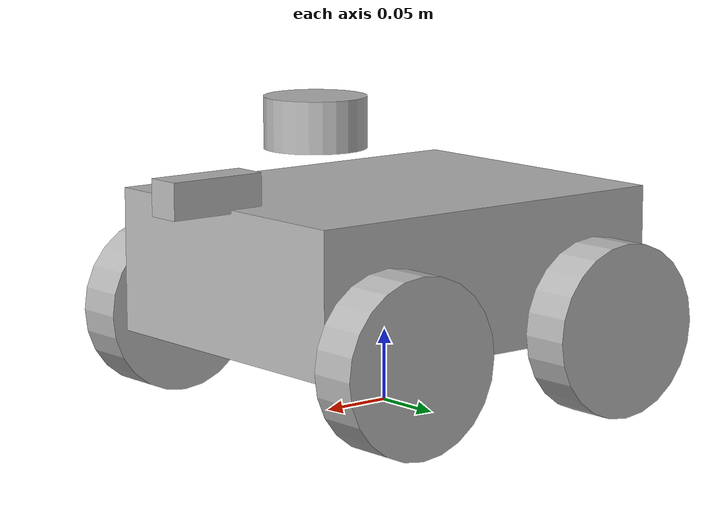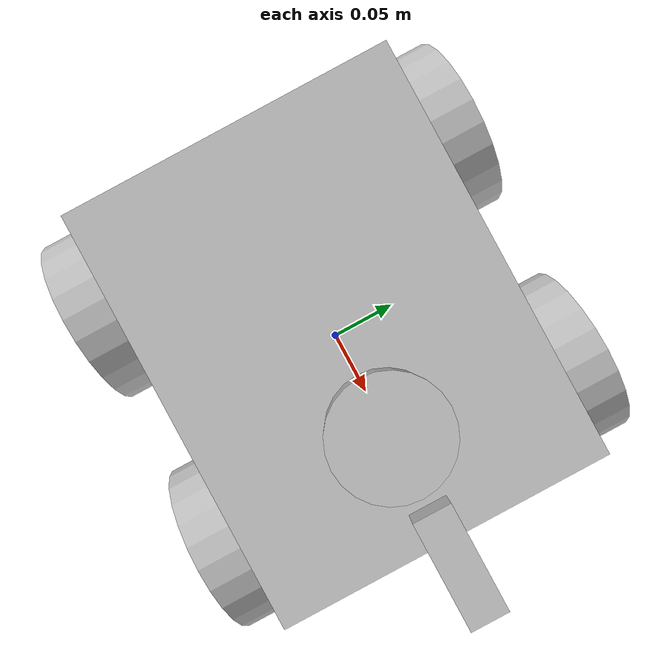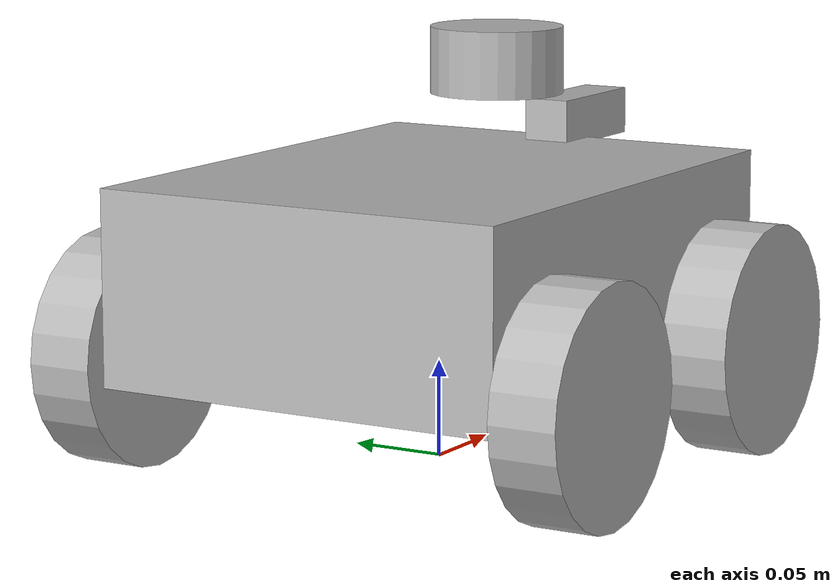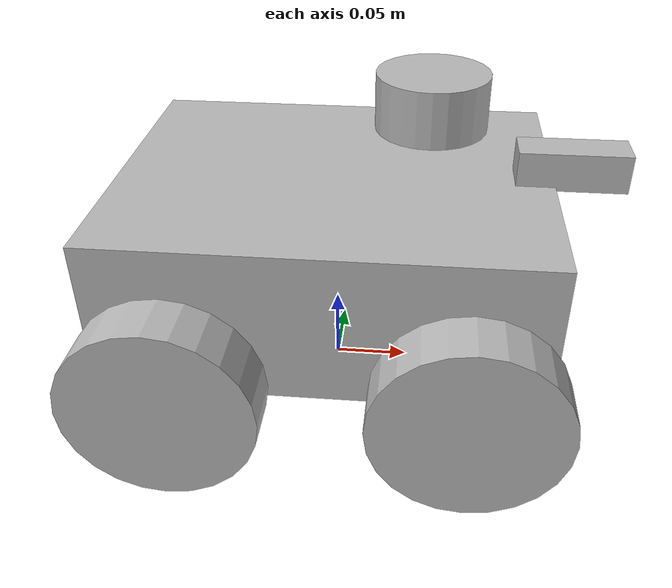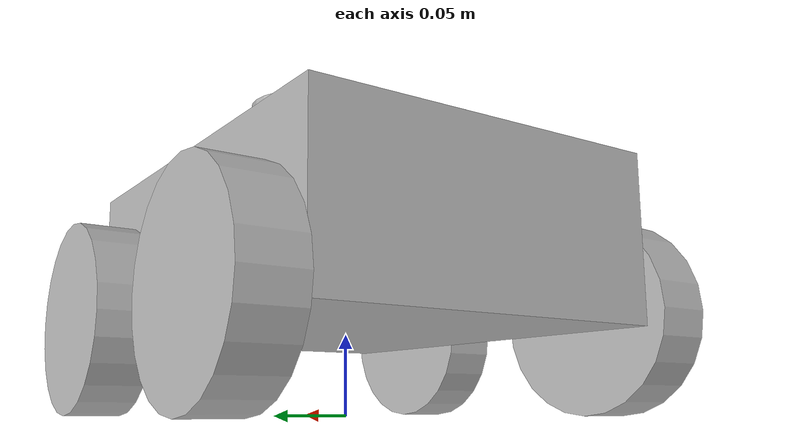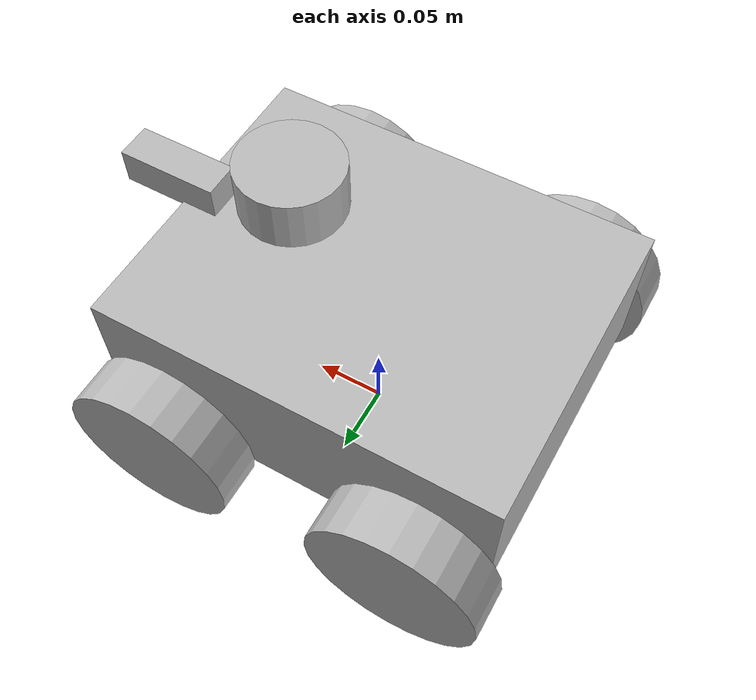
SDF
<?xml version="1.0" ?>
<sdf version="1.9">
  <model name="buddy_v0_1">
    <pose>0 0 0 0 0 0</pose>
    <self_collide>false</self_collide>

    <link name="base_link">
      <pose>0 0 0.10 0 0 0</pose>
      <inertial>
        <mass>20.0</mass>
        <inertia><ixx>0.20</ixx><ixy>0</ixy><ixz>0</ixz><iyy>0.20</iyy><iyz>0</iyz><izz>0.25</izz></inertia>
      </inertial>
      <collision name="collision"><geometry><box><size>0.28 0.22 0.10</size></box></geometry></collision>
      <visual name="visual"><geometry><box><size>0.28 0.22 0.10</size></box></geometry></visual>
    </link>

    <link name="left_front_wheel_link">
      <pose>0.09 0.13 0.06 0 0 0</pose>
      <inertial><mass>0.5</mass><inertia><ixx>0.001</ixx><ixy>0</ixy><ixz>0</ixz><iyy>0.001</iyy><iyz>0</iyz><izz>0.001</izz></inertia></inertial>
      <collision name="collision"><pose>0 0 0 1.57079632679 0 0</pose><geometry><cylinder><radius>0.06</radius><length>0.035</length></cylinder></geometry></collision>
      <visual name="visual"><pose>0 0 0 1.57079632679 0 0</pose><geometry><cylinder><radius>0.06</radius><length>0.035</length></cylinder></geometry></visual>
    </link>
    <joint name="left_front_wheel_joint" type="revolute">
      <parent>base_link</parent><child>left_front_wheel_link</child><axis><xyz>0 1 0</xyz><limit><lower>-1e16</lower><upper>1e16</upper></limit></axis>
    </joint>

    <link name="left_rear_wheel_link">
      <pose>-0.09 0.13 0.06 0 0 0</pose>
      <inertial><mass>0.5</mass><inertia><ixx>0.001</ixx><ixy>0</ixy><ixz>0</ixz><iyy>0.001</iyy><iyz>0</iyz><izz>0.001</izz></inertia></inertial>
      <collision name="collision"><pose>0 0 0 1.57079632679 0 0</pose><geometry><cylinder><radius>0.06</radius><length>0.035</length></cylinder></geometry></collision>
      <visual name="visual"><pose>0 0 0 1.57079632679 0 0</pose><geometry><cylinder><radius>0.06</radius><length>0.035</length></cylinder></geometry></visual>
    </link>
    <joint name="left_rear_wheel_joint" type="revolute">
      <parent>base_link</parent><child>left_rear_wheel_link</child><axis><xyz>0 1 0</xyz><limit><lower>-1e16</lower><upper>1e16</upper></limit></axis>
    </joint>

    <link name="right_front_wheel_link">
      <pose>0.09 -0.13 0.06 0 0 0</pose>
      <inertial><mass>0.5</mass><inertia><ixx>0.001</ixx><ixy>0</ixy><ixz>0</ixz><iyy>0.001</iyy><iyz>0</iyz><izz>0.001</izz></inertia></inertial>
      <collision name="collision"><pose>0 0 0 1.57079632679 0 0</pose><geometry><cylinder><radius>0.06</radius><length>0.035</length></cylinder></geometry></collision>
      <visual name="visual"><pose>0 0 0 1.57079632679 0 0</pose><geometry><cylinder><radius>0.06</radius><length>0.035</length></cylinder></geometry></visual>
    </link>
    <joint name="right_front_wheel_joint" type="revolute">
      <parent>base_link</parent><child>right_front_wheel_link</child><axis><xyz>0 1 0</xyz><limit><lower>-1e16</lower><upper>1e16</upper></limit></axis>
    </joint>

    <link name="right_rear_wheel_link">
      <pose>-0.09 -0.13 0.06 0 0 0</pose>
      <inertial><mass>0.5</mass><inertia><ixx>0.001</ixx><ixy>0</ixy><ixz>0</ixz><iyy>0.001</iyy><iyz>0</iyz><izz>0.001</izz></inertia></inertial>
      <collision name="collision"><pose>0 0 0 1.57079632679 0 0</pose><geometry><cylinder><radius>0.06</radius><length>0.035</length></cylinder></geometry></collision>
      <visual name="visual"><pose>0 0 0 1.57079632679 0 0</pose><geometry><cylinder><radius>0.06</radius><length>0.035</length></cylinder></geometry></visual>
    </link>
    <joint name="right_rear_wheel_joint" type="revolute">
      <parent>base_link</parent><child>right_rear_wheel_link</child><axis><xyz>0 1 0</xyz><limit><lower>-1e16</lower><upper>1e16</upper></limit></axis>
    </joint>

    <link name="base_laser">
      <pose>0.06 0 0.20 0 0 0</pose>
      <sensor name="scan" type="gpu_lidar">
        <topic>/scan</topic>
        <update_rate>10</update_rate>
        <lidar>
          <scan><horizontal><samples>360</samples><resolution>1</resolution><min_angle>-3.14159</min_angle><max_angle>3.14159</max_angle></horizontal></scan>
          <range><min>0.08</min><max>8.0</max><resolution>0.01</resolution></range>
        </lidar>
        <always_on>true</always_on>
        <visualize>true</visualize>
      </sensor>
      <visual name="visual"><geometry><cylinder><radius>0.035</radius><length>0.035</length></cylinder></geometry></visual>
    </link>
    <joint name="base_laser_joint" type="fixed"><parent>base_link</parent><child>base_laser</child></joint>

    <link name="front_camera_link">
      <pose>0.15 0 0.16 0 0 0</pose>
      <visual name="visual"><geometry><box><size>0.07 0.025 0.025</size></box></geometry></visual>
    </link>
    <joint name="front_camera_joint" type="fixed"><parent>base_link</parent><child>front_camera_link</child></joint>

    <plugin filename="gz-sim-diff-drive-system" name="gz::sim::systems::DiffDrive">
      <left_joint>left_front_wheel_joint</left_joint>
      <left_joint>left_rear_wheel_joint</left_joint>
      <right_joint>right_front_wheel_joint</right_joint>
      <right_joint>right_rear_wheel_joint</right_joint>
      <wheel_separation>0.26</wheel_separation>
      <wheel_radius>0.06</wheel_radius>
      <odom_publish_frequency>50</odom_publish_frequency>
      <topic>/cmd_vel</topic>
      <odom_topic>/odom</odom_topic>
      <frame_id>odom</frame_id>
      <child_frame_id>base_link</child_frame_id>
    </plugin>
  </model>
</sdf>
